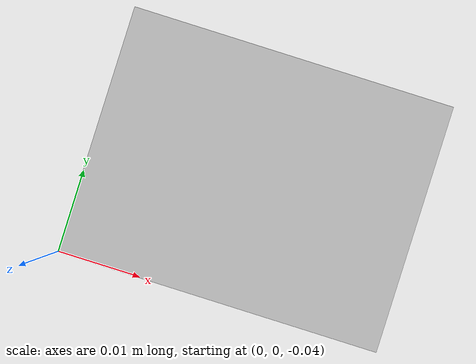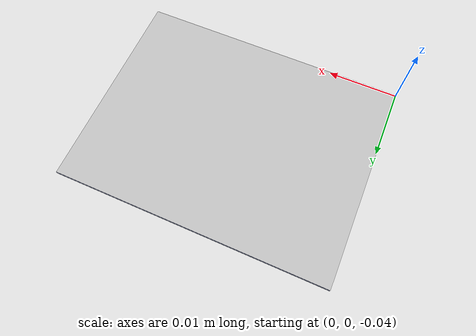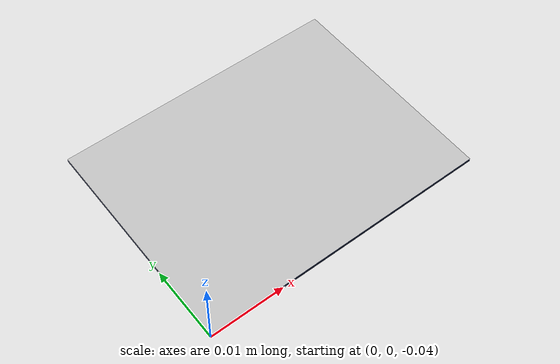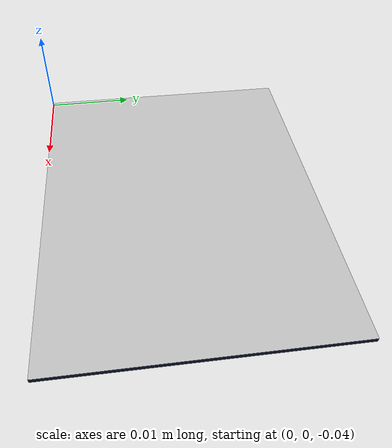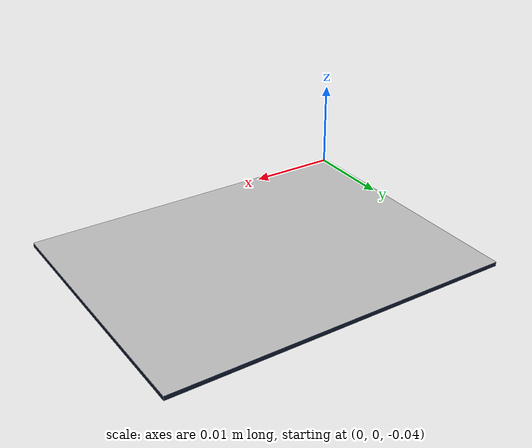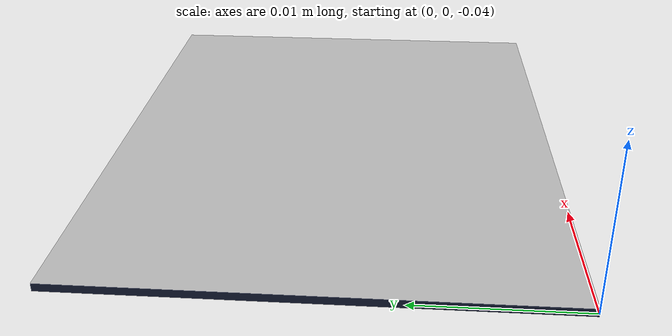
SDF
<?xml version="1.0" ?>
<sdf version="1.4">
  <!-- We use a custom world for the rrbot so that the camera angle is launched correctly -->

  <world name="default">

    <scene>
        <background>
            <color>0 0 0 1</color>
        </background>
        <shadows>0</shadows>
    </scene>

    <include>
      <uri>model://ground_plane_invisible</uri>
    </include>

    <include>
      <uri>model://circuit</uri>
      <pose>0 0 -0.040176 0 0 0</pose>
      <surface>
        <friction>
          <ode>
            <mu>1.0</mu>       <!-- Primary friction coefficient -->
            <mu2>1.0</mu2>     <!-- Secondary friction coefficient -->
            <fdir1>1 0 0</fdir1> <!-- Friction direction (optional) -->
            <slip1>0.0</slip1> <!-- Reducing slip -->
            <slip2>0.0</slip2>
          </ode>
        </friction>
      </surface>
    </include>

            <light name='user_point_light_8' type='point'>
      <pose>8.0 -8.0 2.0 0 -0 0</pose>
      <diffuse>0.1 0.1 0.1 1</diffuse>
      <specular>0.1 0.1 0.1 1</specular>
      <attenuation>
        <range>100</range>
        <constant>0.05</constant>
        <linear>0.0</linear>
        <quadratic>0.001</quadratic>
      </attenuation>
      <cast_shadows>0</cast_shadows>
      <direction>0 0 -1</direction>
    </light>

            <light name='user_point_light_7' type='point'>
      <pose>-8.0 8.0 2.0 0 -0 0</pose>
      <diffuse>0.1 0.1 0.1 1</diffuse>
      <specular>0.1 0.1 0.1 1</specular>
      <attenuation>
        <range>100</range>
        <constant>0.05</constant>
        <linear>0.0</linear>
        <quadratic>0.001</quadratic>
      </attenuation>
      <cast_shadows>0</cast_shadows>
      <direction>0 0 -1</direction>
    </light>

            <light name='user_point_light_6' type='point'>
      <pose>-8.0 -8.0 2.0 0 -0 0</pose>
      <diffuse>0.1 0.1 0.1 1</diffuse>
      <specular>0.1 0.1 0.1 1</specular>
      <attenuation>
        <range>100</range>
        <constant>0.05</constant>
        <linear>0.0</linear>
        <quadratic>0.001</quadratic>
      </attenuation>
      <cast_shadows>0</cast_shadows>
      <direction>0 0 -1</direction>
    </light>

        <light name='user_point_light_5' type='point'>
      <pose>8.0 8.0 2.0 0 -0 0</pose>
      <diffuse>0.1 0.1 0.1 1</diffuse>
      <specular>0.1 0.1 0.1 1</specular>
      <attenuation>
        <range>100</range>
        <constant>0.05</constant>
        <linear>0.0</linear>
        <quadratic>0.001</quadratic>
      </attenuation>
      <cast_shadows>0</cast_shadows>
      <direction>0 0 -1</direction>
    </light>

        <light name='user_point_light_1' type='point'>
      <pose>0.0 -8.0 2.0 0 -0 0</pose>
      <diffuse>0.1 0.1 0.1 1</diffuse>
      <specular>0.1 0.1 0.1 1</specular>
      <attenuation>
        <range>100</range>
        <constant>0.05</constant>
        <linear>0.0</linear>
        <quadratic>0.001</quadratic>
      </attenuation>
      <cast_shadows>0</cast_shadows>
      <direction>0 0 -1</direction>
    </light>

        <light name='user_point_light_2' type='point'>
      <pose>0.0 8.0 2.0 0 -0 0</pose>
      <diffuse>0.1 0.1 0.1 1</diffuse>
      <specular>0.1 0.1 0.1 1</specular>
      <attenuation>
        <range>100</range>
        <constant>0.05</constant>
        <linear>0.0</linear>
        <quadratic>0.001</quadratic>
      </attenuation>
      <cast_shadows>0</cast_shadows>
      <direction>0 0 -1</direction>
    </light>

            <light name='user_point_light_3' type='point'>
      <pose>-8.0 0.0 2.0 0 -0 0</pose>
      <diffuse>0.1 0.1 0.1 1</diffuse>
      <specular>0.1 0.1 0.1 1</specular>
      <attenuation>
        <range>100</range>
        <constant>0.05</constant>
        <linear>0.0</linear>
        <quadratic>0.001</quadratic>
      </attenuation>
      <cast_shadows>0</cast_shadows>
      <direction>0 0 -1</direction>
    </light>

        <light name='user_point_light_4' type='point'>
      <pose>8.0 0.0 2.0 0 -0 0</pose>
      <diffuse>0.1 0.1 0.1 1</diffuse>
      <specular>0.1 0.1 0.1 1</specular>
      <attenuation>
        <range>100</range>
        <constant>0.05</constant>
        <linear>0.0</linear>
        <quadratic>0.001</quadratic>
      </attenuation>
      <cast_shadows>0</cast_shadows>
      <direction>0 0 -1</direction>
    </light>

      <plugin name="gazebo_ros_state" filename="libgazebo_ros_state.so">
      <ros>
        <namespace>/gazebo</namespace>
      </ros>
      <update_rate>5.0</update_rate>
    </plugin>

    <gui fullscreen='0'>
      <camera name='user_camera'>
        <pose>9.23124 1.49257 0.751364 0 0.327643 -1.52699</pose>
        <view_controller>orbit</view_controller>
        <projection_type>perspective</projection_type>
      </camera>
    </gui>

  </world>
</sdf>

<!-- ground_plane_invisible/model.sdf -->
<sdf version="1.5">
  <model name="ground_plane_invisible">
    <static>true</static>
    <link name="link">
      <collision name="collision">
        <geometry>
          <plane>
            <normal>0 0 1</normal>
            <size>100 100</size>
          </plane>
        </geometry>
        <surface>
          <friction>
            <ode>
              <mu>100</mu>
              <mu2>50</mu2>
            </ode>
          </friction>
        </surface>
      </collision>

    </link>
  </model>
</sdf>

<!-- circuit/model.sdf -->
<sdf version="1.5">
  <model name="circuit">
    <static>true</static>
    <link name="link">
      <inertial>
  	<pose>2 2 0 0 0 0</pose>
        <mass>0.00001</mass>
        <inertia>
          <ixx>0.000166667</ixx>
          <iyy>0.000166667</iyy>
          <izz>0.000166667</izz>
        </inertia>
      </inertial>
      <collision name="collision">
        <geometry>
          <mesh>
            <uri>model://circuit/meshes/pcb.dae</uri>
          </mesh>
        </geometry>
      </collision>
      <visual name="visual">
        <geometry>
          <mesh>
            <uri>model://circuit/meshes/pcb.dae</uri>
          </mesh>
        </geometry>
      </visual>
    </link>
  </model>
</sdf>
